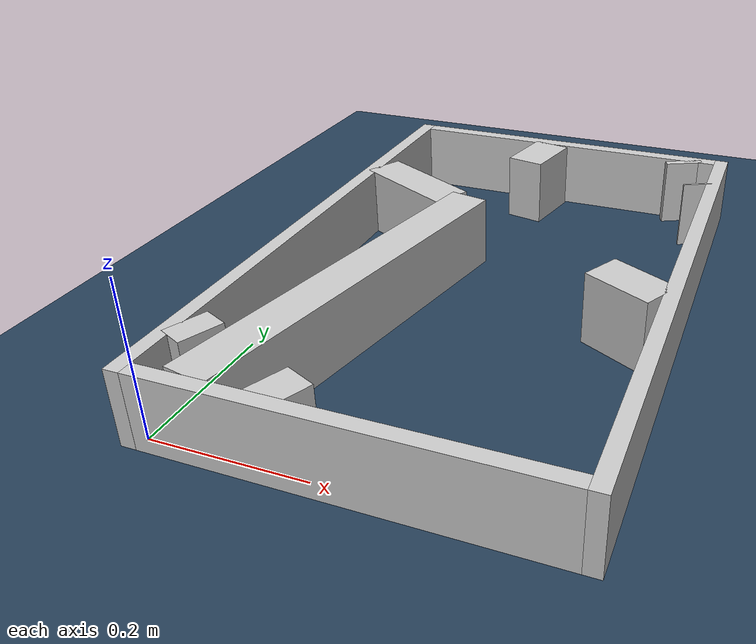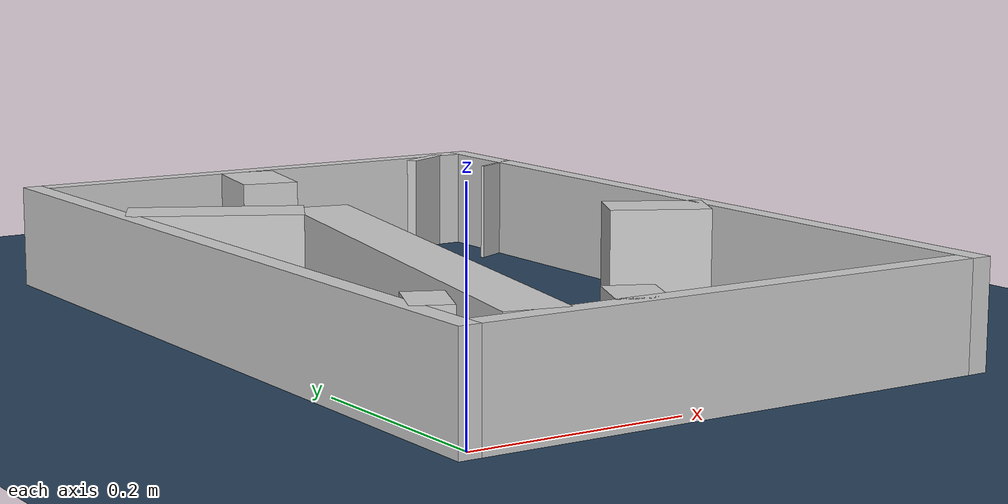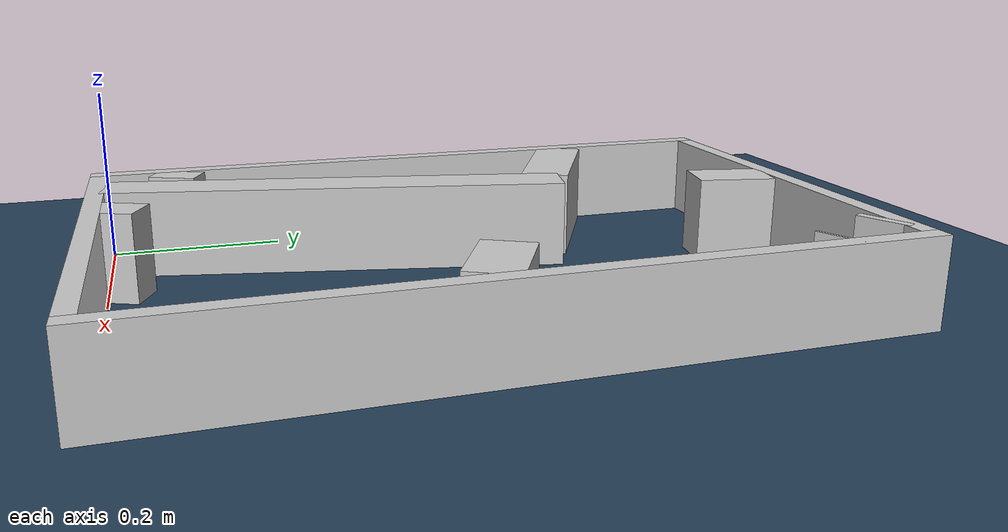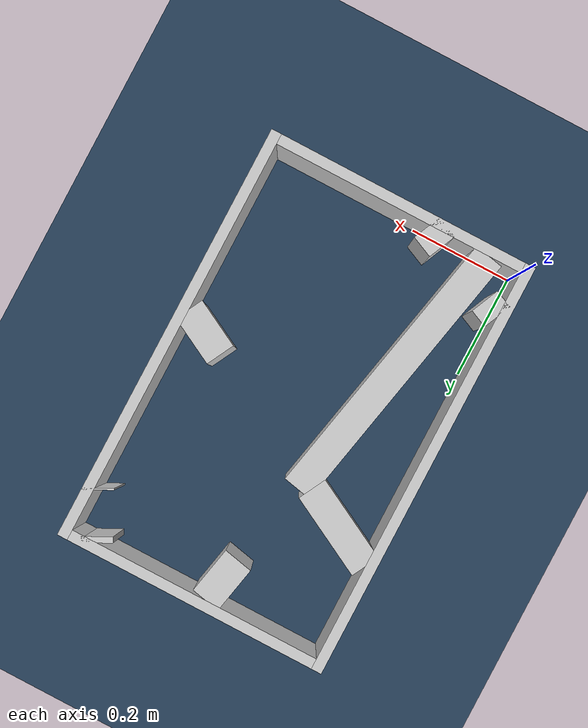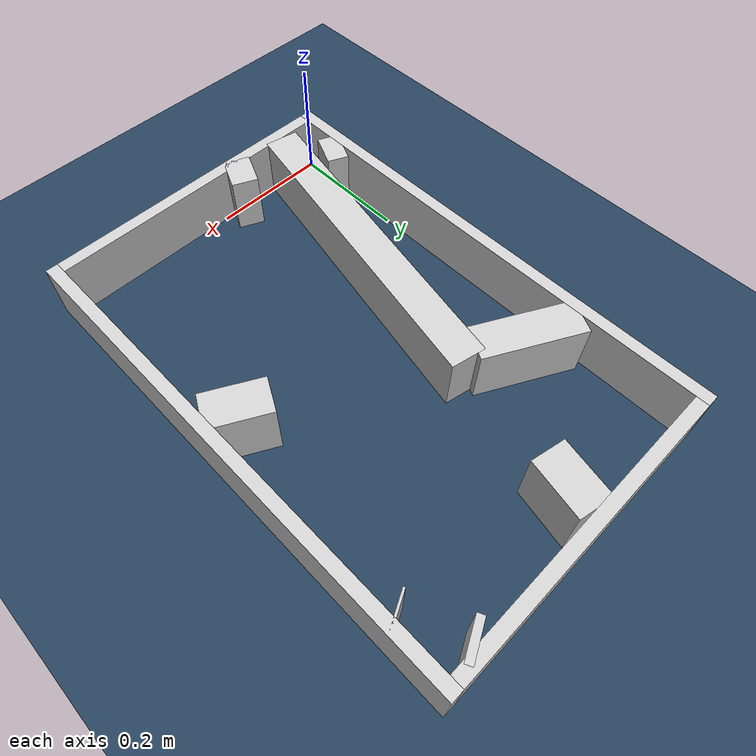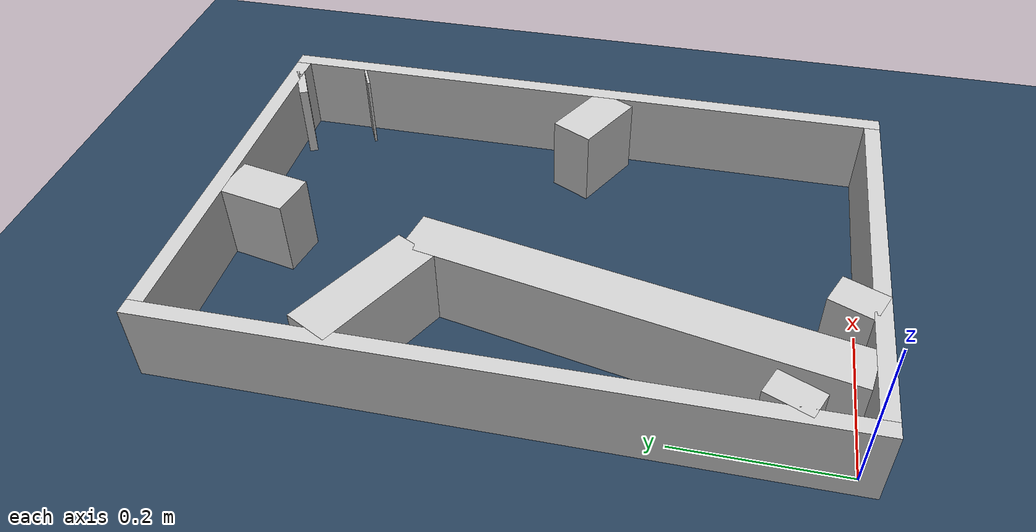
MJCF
<?xml version="1.0" ?>
<mujoco model="generated_real_template">
  <compiler angle="degree"/>
  <option timestep="0.002" integrator="implicitfast" iterations="100" cone="elliptic"/>
  <default>
    <geom density="1"/>
  </default>
  <asset>
    <texture builtin="gradient" height="3072" rgb1="0.3 0.5 0.7" rgb2="0 0 0" type="skybox" width="512"/>
    <texture builtin="checker" height="300" mark="edge" markrgb="0.8 0.8 0.8" name="groundplane" rgb1="0.2 0.3 0.4" rgb2="0.1 0.2 0.3" type="2d" width="300"/>
    <material name="groundplane" reflectance="0.2" texrepeat="5 5" texture="groundplane" texuniform="true"/>
  </asset>
  <worldbody>
    <light dir="0 0 -1" directional="true" pos="0 0 1.5"/>
    <geom name="floor" type="plane" condim="4" friction="0.5 0.005 0.001" material="groundplane" size="0 0 0.05"/>
    <body name="walls">
      <geom name="wall_boundary_left" type="box" condim="4" friction="1.0 0.005 0.0001" rgba="0.8 0.8 0.8 1" pos="-0.010000 0.387500 0.050000" euler="0 0 0.000000" size="0.010000 0.407500 0.050000"/>
      <geom name="wall_boundary_right" type="box" condim="4" friction="1.0 0.005 0.0001" rgba="0.8 0.8 0.8 1" pos="0.500000 0.387500 0.050000" euler="0 0 0.000000" size="0.010000 0.407500 0.050000"/>
      <geom name="wall_boundary_bottom" type="box" condim="4" friction="1.0 0.005 0.0001" rgba="0.8 0.8 0.8 1" pos="0.245000 -0.010000 0.050000" euler="0 0 0.000000" size="0.245000 0.010000 0.050000"/>
      <geom name="wall_boundary_top" type="box" condim="4" friction="1.0 0.005 0.0001" rgba="0.8 0.8 0.8 1" pos="0.245000 0.785000 0.050000" euler="0 0 0.000000" size="0.245000 0.010000 0.050000"/>
      <geom name="wall_inner_1_1" type="box" condim="4" friction="1.0 0.005 0.0001" rgba="0.8 0.8 0.8 1" pos="0.073991 0.550691 0.050000" euler="0 0 -27.726939" size="0.083589 0.028500 0.050000"/>
      <geom name="wall_inner_1_2" type="box" condim="4" friction="1.0 0.005 0.0001" rgba="0.8 0.8 0.8 1" pos="0.446650 0.354817 0.050000" euler="0 0 -27.726939" size="0.048974 0.028500 0.050000"/>
      <geom name="wall_inner_2_1" type="box" condim="4" friction="1.0 0.005 0.0001" rgba="0.8 0.8 0.8 1" pos="0.164678 0.014928 0.050000" euler="0 0 156.035963" size="0.021873 0.028500 0.050000"/>
      <geom name="wall_inner_2_2" type="box" condim="4" friction="1.0 0.005 0.0001" rgba="0.8 0.8 0.8 1" pos="0.016429 0.080822 0.050000" euler="0 0 156.035963" size="0.017979 0.028500 0.050000"/>
      <geom name="wall_inner_3_1" type="box" condim="4" friction="1.0 0.005 0.0001" rgba="0.8 0.8 0.8 1" pos="0.213520 0.730165 0.050000" euler="0 0 -101.635784" size="0.045776 0.028500 0.050000"/>
      <geom name="wall_inner_3_2" type="box" condim="4" friction="1.0 0.005 0.0001" rgba="0.8 0.8 0.8 1" pos="0.117105 0.261952 0.050000" euler="0 0 -101.635784" size="0.267449 0.028500 0.050000"/>
      <geom name="wall_inner_4_1" type="box" condim="4" friction="1.0 0.005 0.0001" rgba="0.8 0.8 0.8 1" pos="0.443352 0.769989 0.050000" euler="0 0 -63.344103" size="0.005606 0.028500 0.050000"/>
      <geom name="wall_inner_4_2" type="box" condim="4" friction="1.0 0.005 0.0001" rgba="0.8 0.8 0.8 1" pos="0.483782 0.689449 0.050000" euler="0 0 -63.344103" size="0.001664 0.028500 0.050000"/>
    </body>
  </worldbody>
</mujoco>
